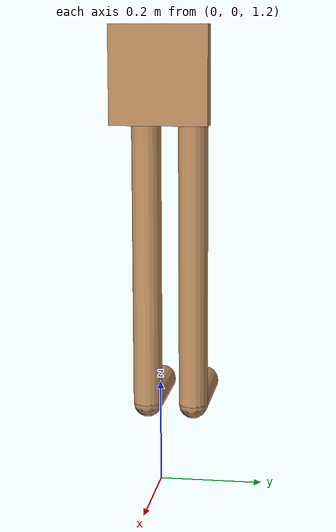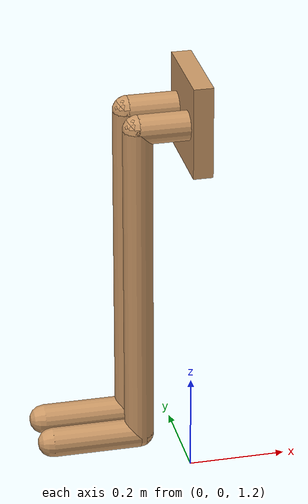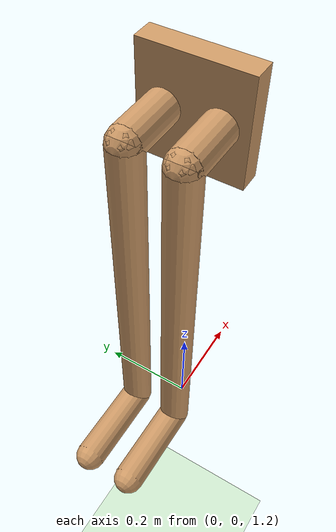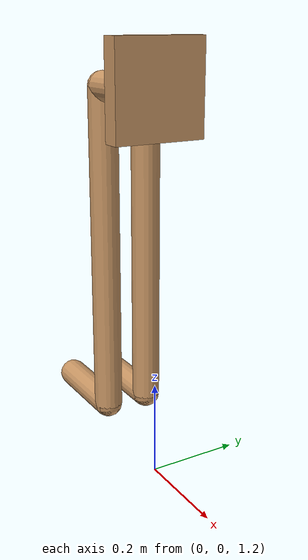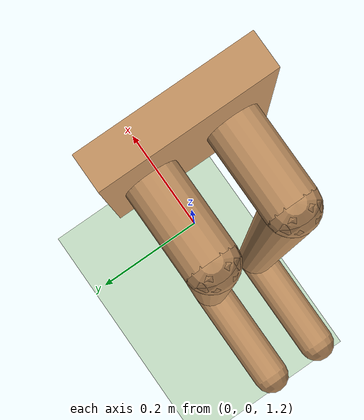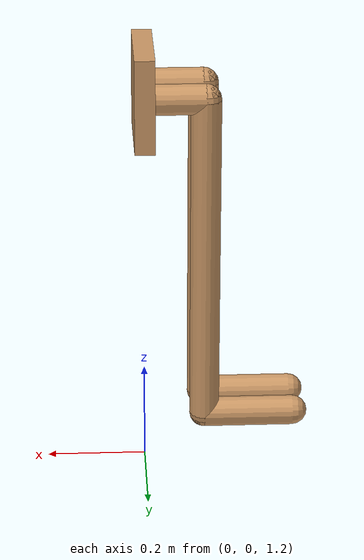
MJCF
<?xml version="1.0" encoding="utf-8"?>
<mujoco model="srl_1">
	<compiler/>
	<option gravity="0 0 0"/>
	<size nconmax="500" njmax="1000"/>
	<custom/>
	<default>
		<joint armature="1" damping="1" limited="true"/>
		<geom conaffinity="0" condim="3" margin="0.01" rgba="0.8 0.6 0.4 1"/>
	</default>
	<asset>
		<texture builtin="gradient" height="100" rgb1="1 1 1" rgb2="0 0 0" type="skybox" width="100"/>
		<texture builtin="flat" height="1278" mark="cross" markrgb="1 1 1" name="texgeom" random="0.01" rgb1="0.8 0.6 0.4" rgb2="0.8 0.6 0.4" type="cube" width="127"/>
		<texture builtin="checker" height="100" name="texplane" rgb1="0 0 0" rgb2="0.8 0.8 0.8" type="2d" width="100"/>
		<material name="MatPlane" reflectance="0.5" shininess="1" specular="1" texrepeat="60 60" texture="texplane"/>
		<material name="geom" texture="texgeom" texuniform="true"/>
		<material name="SRL" rgba="0.66 0.65 0.68 1"/>
	</asset>
	<worldbody>
		<light cutoff="100" diffuse="1 1 1" dir="0 0 -1.3" directional="true" exponent="1" pos="0 0 1.3" specular="0.1 0.1 0.1"/>
		<geom conaffinity="1" condim="3" material="MatPlane" name="floor" pos="0 0 0" rgba="0.8 0.9 0.8 1" size="40 40 40" type="plane"/>
		<body name="root" pos="0 0 2" quat="0.0 0.0 0.0 1.0">
			<geom material="SRL" name="geomroot" pos="0 0 0" size="0.02 0.095 0.095" type="box"/>
			<body name="leg2" pos="0.02 0.0475 0" quat="1.0 0.0 0.0 0.0">
				<geom fromto="0 0 0 0.1 0 0" material="SRL" name="geomleg2" size="0.03" type="capsule"/>
				<joint axis="0 0 1" name="joint_joint11" pos="0 0 0" range="-45 45" type="hinge"/>
				<joint axis="0 1 0" name="joint_joint12" pos="0 0 0" range="-45 45" type="hinge"/>
				<body name="shin11" pos="0.1 0 0" quat="0.70711 0.0 0.70711 0.0">
					<geom fromto="0 0 0 0.68 0 0" material="SRL" name="geomshin11" size="0.03" type="capsule"/>
					<joint axis="0 1 0" name="joint_joint13" pos="0 0 0" range="-45 45" type="hinge"/>
					<body name="shin12" pos="0.68 0 0" quat="0.70711 0.0 -0.70711 0.0">
						<geom fromto="0 0 0 0.18 0 0" material="SRL" name="geomshin12" size="0.03" type="capsule"/>
						<joint axis="0 1 0" name="joint_joint14" pos="0 0 0" range="-45 45" type="hinge"/>
					</body>
				</body>
			</body>
			<body name="leg1" pos="0.02 -0.0475 0" quat="1.0 0.0 0.0 0.0">
				<geom fromto="0 0 0 0.1 0 0" material="SRL" name="geomleg1" size="0.03" type="capsule"/>
				<joint axis="0 0 1" name="joint_joint01" pos="0 0 0" range="-45 45" type="hinge"/>
				<joint axis="0 1 0" name="joint_joint02" pos="0 0 0" range="-45 45" type="hinge"/>
				<body name="shin1" pos="0.1 0 0" quat="0.70711 0.0 0.70711 0.0">
					<geom fromto="0 0 0 0.68 0 0" material="SRL" name="geomshin1" size="0.03" type="capsule"/>
					<joint axis="0 1 0" name="joint_joint1" pos="0 0 0" range="-45 45" type="hinge"/>
					<body name="shin2" pos="0.68 0 0" quat="0.70711 0.0 -0.70711 0.0">
						<geom fromto="0 0 0 0.18 0 0" material="SRL" name="geomshin2" size="0.03" type="capsule"/>
						<joint axis="0 1 0" name="joint_joint2" pos="0 0 0" range="-45 45" type="hinge"/>
					</body>
				</body>
			</body>
		</body>
	</worldbody>
	<actuator>
		<motor ctrllimited="true" ctrlrange="-1 1" joint="joint_joint11"/>
		<motor ctrllimited="true" ctrlrange="-1 1" joint="joint_joint12"/>
		<motor ctrllimited="true" ctrlrange="-1 1" joint="joint_joint13"/>
		<motor ctrllimited="true" ctrlrange="-1 1" joint="joint_joint14"/>
		<motor ctrllimited="true" ctrlrange="-1 1" joint="joint_joint01"/>
		<motor ctrllimited="true" ctrlrange="-1 1" joint="joint_joint02"/>
		<motor ctrllimited="true" ctrlrange="-1 1" joint="joint_joint1"/>
		<motor ctrllimited="true" ctrlrange="-1 1" joint="joint_joint2"/>
	</actuator>
</mujoco>
